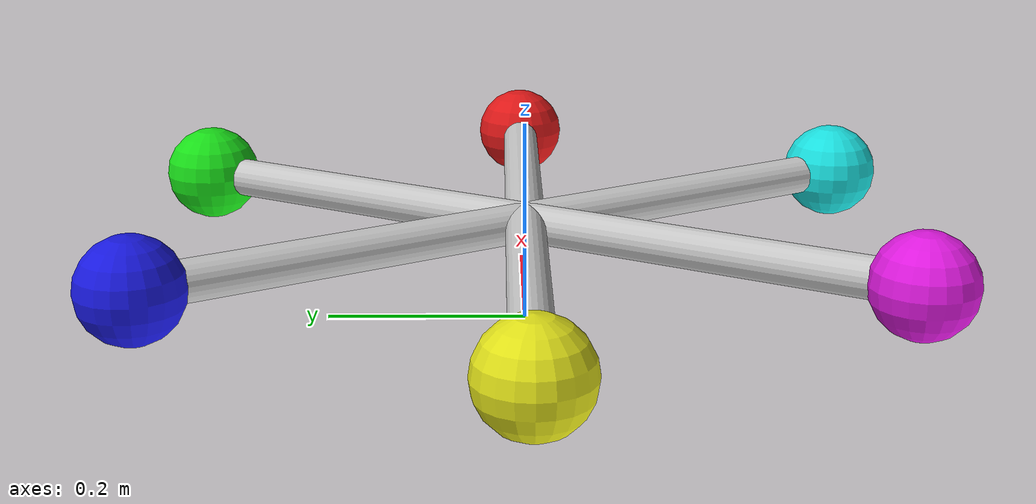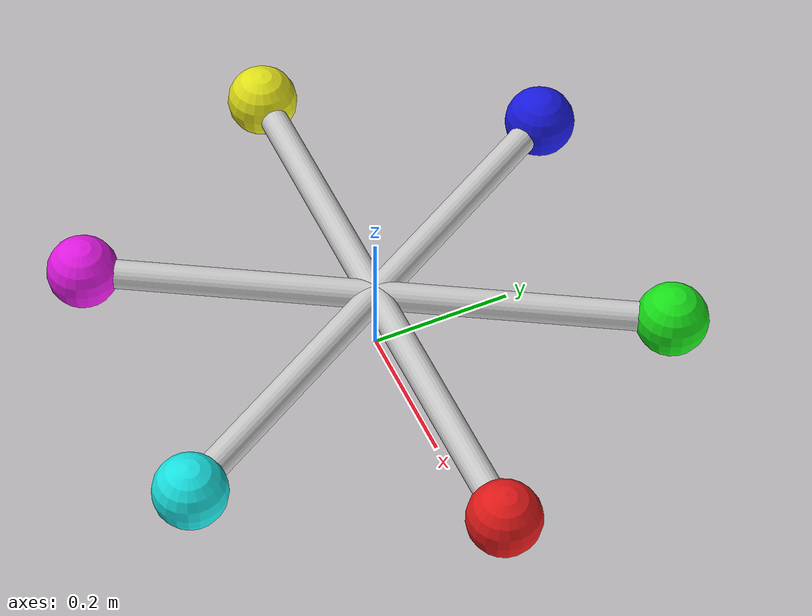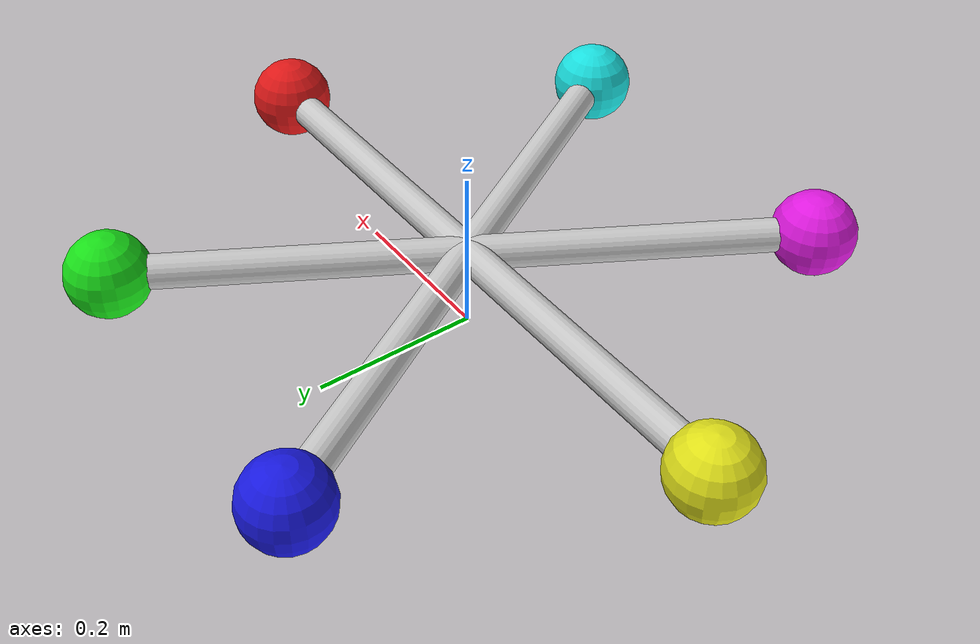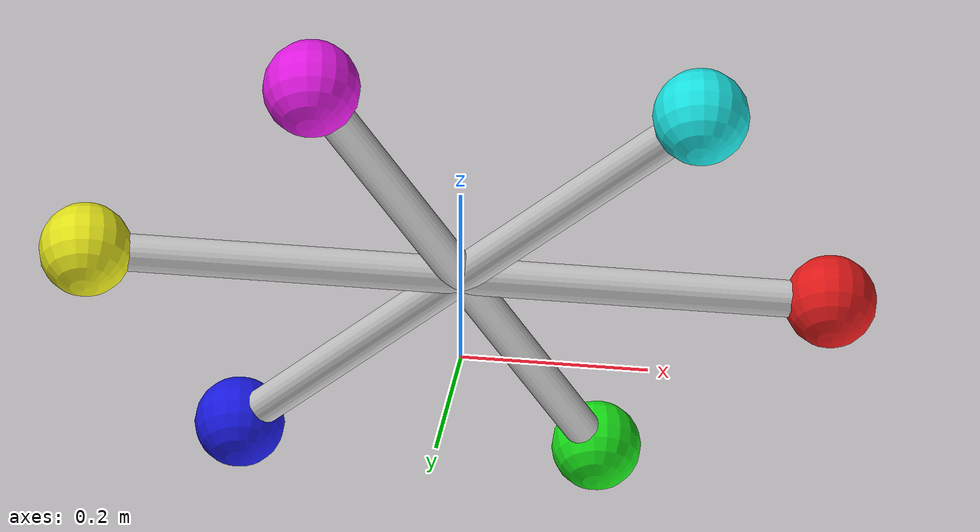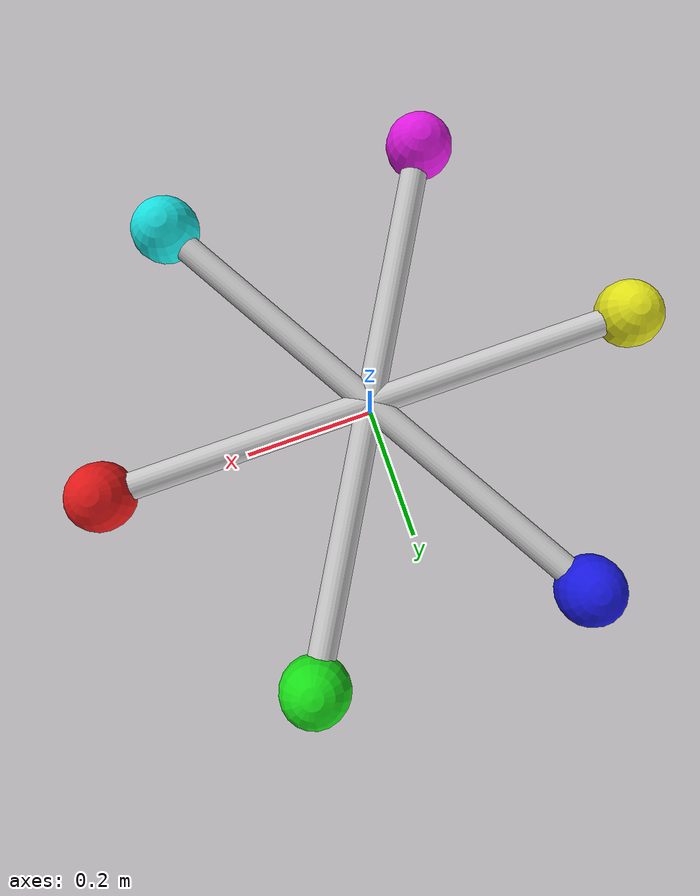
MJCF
<?xml version="1.0" ?>
<mujoco model="hexacopter">
  <compiler angle="degree" coordinate="local" />
  <option timestep="0.002" gravity="0 0 -9.81" />
  <default>
    <joint type="hinge" limited="false" damping="0.1" />
    <geom type="cylinder" size="0.02 0.2" material="metal" rgba="0.8 0.8 0.8 1" contype="0" conaffinity="0" />
  </default>
  <asset>
    <material name="metal" rgba="0.7 0.7 0.7 1"/>
  </asset>

  <worldbody>
    <body name="central_body" pos="0 0 0.1">
      <freejoint name="freejoint" />
      <inertial pos="0 0 0" mass="1" diaginertia="0.01 0.01 0.01" />
      <!-- Arms -->
      <body name="arm0_body" pos="0 0 0">
        <joint name="arm0_joint" type="hinge" axis="0 0 1" />
        <geom name="arm0_geom" type="cylinder" fromto="0 0 0 0.4 0 0" size="0.02 0.4" />
        <body name="prop0_body" pos="0.4 0 0">
          <geom name="prop0_geom" type="sphere" size="0.05" rgba="0.9 0.1 0.1 1" />
        </body>
      </body>
      <body name="arm1_body" pos="0 0 0" euler="0 0 60">
        <joint name="arm1_joint" type="hinge" axis="0 0 1" />
        <geom name="arm1_geom" type="cylinder" fromto="0 0 0 0.4 0 0" size="0.02 0.4" />
        <body name="prop1_body" pos="0.4 0 0">
          <geom name="prop1_geom" type="sphere" size="0.05" rgba="0.1 0.9 0.1 1" />
        </body>
      </body>
      <body name="arm2_body" pos="0 0 0" euler="0 0 120">
        <joint name="arm2_joint" type="hinge" axis="0 0 1" />
        <geom name="arm2_geom" type="cylinder" fromto="0 0 0 0.4 0 0" size="0.02 0.4" />
        <body name="prop2_body" pos="0.4 0 0">
          <geom name="prop2_geom" type="sphere" size="0.05" rgba="0.1 0.1 0.9 1" />
        </body>
      </body>
      <body name="arm3_body" pos="0 0 0" euler="0 0 180">
        <joint name="arm3_joint" type="hinge" axis="0 0 1" />
        <geom name="arm3_geom" type="cylinder" fromto="0 0 0 0.4 0 0" size="0.02 0.4" />
        <body name="prop3_body" pos="0.4 0 0">
          <geom name="prop3_geom" type="sphere" size="0.05" rgba="0.9 0.9 0.1 1" />
        </body>
      </body>
      <body name="arm4_body" pos="0 0 0" euler="0 0 240">
        <joint name="arm4_joint" type="hinge" axis="0 0 1" />
        <geom name="arm4_geom" type="cylinder" fromto="0 0 0 0.4 0 0" size="0.02 0.4" />
        <body name="prop4_body" pos="0.4 0 0">
          <geom name="prop4_geom" type="sphere" size="0.05" rgba="0.9 0.1 0.9 1" />
        </body>
      </body>
      <body name="arm5_body" pos="0 0 0" euler="0 0 300">
        <joint name="arm5_joint" type="hinge" axis="0 0 1" />
        <geom name="arm5_geom" type="cylinder" fromto="0 0 0 0.4 0 0" size="0.02 0.4" />
        <body name="prop5_body" pos="0.4 0 0">
          <geom name="prop5_geom" type="sphere" size="0.05" rgba="0.1 0.9 0.9 1" />
        </body>
      </body>
    </body>
  </worldbody>

  <actuator>
    <motor name="motor0" joint="arm0_joint" ctrlrange="-500 500" gear="100" />
    <motor name="motor1" joint="arm1_joint" ctrlrange="-500 500" gear="100" />
    <motor name="motor2" joint="arm2_joint" ctrlrange="-500 500" gear="100" />
    <motor name="motor3" joint="arm3_joint" ctrlrange="-500 500" gear="100" />
    <motor name="motor4" joint="arm4_joint" ctrlrange="-500 500" gear="100" />
    <motor name="motor5" joint="arm5_joint" ctrlrange="-500 500" gear="100" />
  </actuator>
</mujoco>
